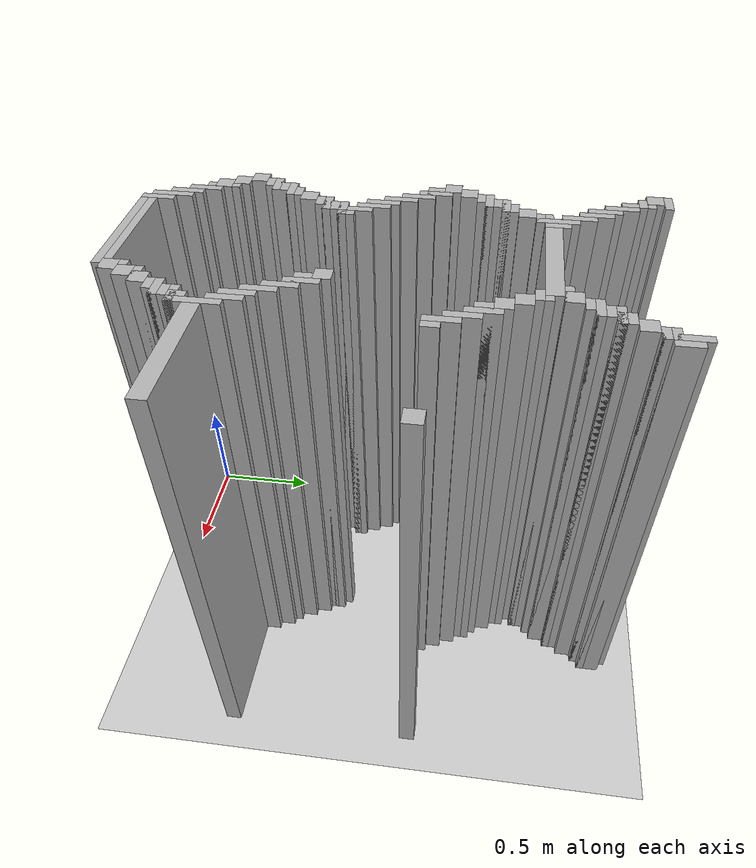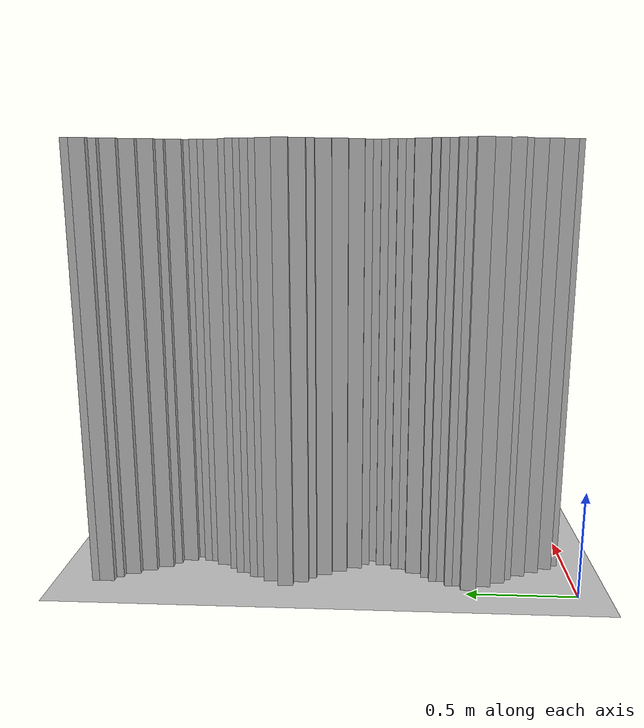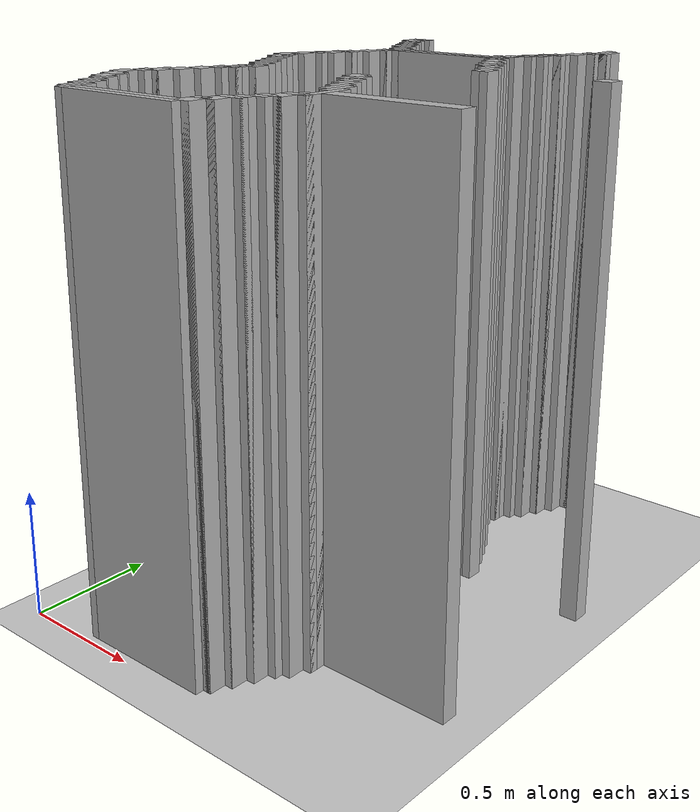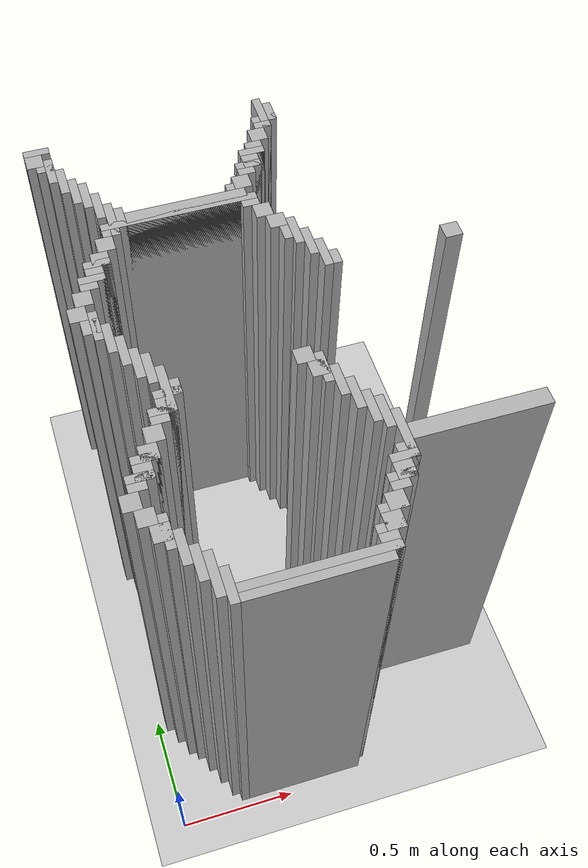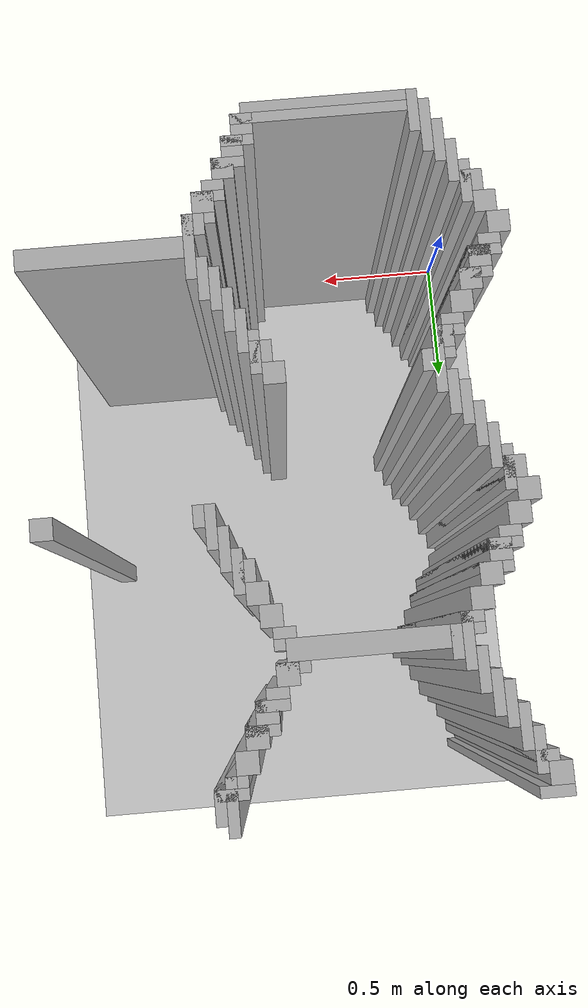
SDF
<sdf version="1.6">
 <world name="slam_world">
  <model name="ground_plane">
   <static>true</static>
   <link name="link">
    <collision name="collision">
     <geometry><plane><normal>0 0 1</normal><size>100 100</size></plane></geometry>
    </collision>
    <visual name="visual">
     <geometry><plane><normal>0 0 1</normal><size>100 100</size></plane></geometry>
     <material>
      <ambient>0.8 0.8 0.8 1</ambient>
      <diffuse>0.8 0.8 0.8 1</diffuse>
      <specular>0.8 0.8 0.8 1</specular>
     </material>
    </visual>
   </link>
  </model>
  <model name="wall_5014">
   <static>true</static>
   <pose>1.0266821345707655 2.1751740139211138 1.0 0 0 0</pose>
   <link name="link">
    <collision name="collision">
     <geometry><box><size>0.03480278422273782 0.17401392111368907 2.0</size></box></geometry>
    </collision>
    <visual name="visual">
     <geometry><box><size>0.03480278422273782 0.17401392111368907 2.0</size></box></geometry>
     <material><ambient>0.5 0.5 0.5 1</ambient><diffuse>0.7 0.7 0.7 1</diffuse></material>
    </visual>
   </link>
  </model>
  <model name="wall_5030">
   <static>true</static>
   <pose>0.08700696055684454 2.2099767981438516 1.0 0 0 0</pose>
   <link name="link">
    <collision name="collision">
     <geometry><box><size>0.10440835266821345 0.03480278422273782 2.0</size></box></geometry>
    </collision>
    <visual name="visual">
     <geometry><box><size>0.10440835266821345 0.03480278422273782 2.0</size></box></geometry>
     <material><ambient>0.5 0.5 0.5 1</ambient><diffuse>0.7 0.7 0.7 1</diffuse></material>
    </visual>
   </link>
  </model>
  <model name="wall_5031">
   <static>true</static>
   <pose>1.0614849187935034 2.1751740139211138 1.0 0 0 0</pose>
   <link name="link">
    <collision name="collision">
     <geometry><box><size>0.03480278422273782 0.10440835266821345 2.0</size></box></geometry>
    </collision>
    <visual name="visual">
     <geometry><box><size>0.03480278422273782 0.10440835266821345 2.0</size></box></geometry>
     <material><ambient>0.5 0.5 0.5 1</ambient><diffuse>0.7 0.7 0.7 1</diffuse></material>
    </visual>
   </link>
  </model>
  <model name="wall_5045">
   <static>true</static>
   <pose>0.06960556844547564 2.1577726218097446 1.0 0 0 0</pose>
   <link name="link">
    <collision name="collision">
     <geometry><box><size>0.06960556844547564 0.06960556844547564 2.0</size></box></geometry>
    </collision>
    <visual name="visual">
     <geometry><box><size>0.06960556844547564 0.06960556844547564 2.0</size></box></geometry>
     <material><ambient>0.5 0.5 0.5 1</ambient><diffuse>0.7 0.7 0.7 1</diffuse></material>
    </visual>
   </link>
  </model>
  <model name="wall_5056">
   <static>true</static>
   <pose>0.12180974477958237 2.088167053364269 1.0 0 0 0</pose>
   <link name="link">
    <collision name="collision">
     <geometry><box><size>0.03480278422273782 0.13921113689095127 2.0</size></box></geometry>
    </collision>
    <visual name="visual">
     <geometry><box><size>0.03480278422273782 0.13921113689095127 2.0</size></box></geometry>
     <material><ambient>0.5 0.5 0.5 1</ambient><diffuse>0.7 0.7 0.7 1</diffuse></material>
    </visual>
   </link>
  </model>
  <model name="wall_5057">
   <static>true</static>
   <pose>1.0266821345707655 2.140371229698376 1.0 0 0 0</pose>
   <link name="link">
    <collision name="collision">
     <geometry><box><size>0.10440835266821345 0.03480278422273782 2.0</size></box></geometry>
    </collision>
    <visual name="visual">
     <geometry><box><size>0.10440835266821345 0.03480278422273782 2.0</size></box></geometry>
     <material><ambient>0.5 0.5 0.5 1</ambient><diffuse>0.7 0.7 0.7 1</diffuse></material>
    </visual>
   </link>
  </model>
  <model name="wall_5073">
   <static>true</static>
   <pose>0.10440835266821345 2.105568445475638 1.0 0 0 0</pose>
   <link name="link">
    <collision name="collision">
     <geometry><box><size>0.06960556844547564 0.03480278422273782 2.0</size></box></geometry>
    </collision>
    <visual name="visual">
     <geometry><box><size>0.06960556844547564 0.03480278422273782 2.0</size></box></geometry>
     <material><ambient>0.5 0.5 0.5 1</ambient><diffuse>0.7 0.7 0.7 1</diffuse></material>
    </visual>
   </link>
  </model>
  <model name="wall_5074">
   <static>true</static>
   <pose>1.0092807424593968 2.105568445475638 1.0 0 0 0</pose>
   <link name="link">
    <collision name="collision">
     <geometry><box><size>0.06960556844547564 0.03480278422273782 2.0</size></box></geometry>
    </collision>
    <visual name="visual">
     <geometry><box><size>0.06960556844547564 0.03480278422273782 2.0</size></box></geometry>
     <material><ambient>0.5 0.5 0.5 1</ambient><diffuse>0.7 0.7 0.7 1</diffuse></material>
    </visual>
   </link>
  </model>
  <model name="wall_5087">
   <static>true</static>
   <pose>0.15661252900232017 2.0185614849187936 1.0 0 0 0</pose>
   <link name="link">
    <collision name="collision">
     <geometry><box><size>0.03480278422273782 0.13921113689095127 2.0</size></box></geometry>
    </collision>
    <visual name="visual">
     <geometry><box><size>0.03480278422273782 0.13921113689095127 2.0</size></box></geometry>
     <material><ambient>0.5 0.5 0.5 1</ambient><diffuse>0.7 0.7 0.7 1</diffuse></material>
    </visual>
   </link>
  </model>
  <model name="wall_5088">
   <static>true</static>
   <pose>0.974477958236659 2.053364269141531 1.0 0 0 0</pose>
   <link name="link">
    <collision name="collision">
     <geometry><box><size>0.06960556844547564 0.06960556844547564 2.0</size></box></geometry>
    </collision>
    <visual name="visual">
     <geometry><box><size>0.06960556844547564 0.06960556844547564 2.0</size></box></geometry>
     <material><ambient>0.5 0.5 0.5 1</ambient><diffuse>0.7 0.7 0.7 1</diffuse></material>
    </visual>
   </link>
  </model>
  <model name="wall_5101">
   <static>true</static>
   <pose>0.191415313225058 1.948955916473318 1.0 0 0 0</pose>
   <link name="link">
    <collision name="collision">
     <geometry><box><size>0.03480278422273782 0.13921113689095127 2.0</size></box></geometry>
    </collision>
    <visual name="visual">
     <geometry><box><size>0.03480278422273782 0.13921113689095127 2.0</size></box></geometry>
     <material><ambient>0.5 0.5 0.5 1</ambient><diffuse>0.7 0.7 0.7 1</diffuse></material>
    </visual>
   </link>
  </model>
  <model name="wall_5102">
   <static>true</static>
   <pose>0.9396751740139211 1.9837587006960555 1.0 0 0 0</pose>
   <link name="link">
    <collision name="collision">
     <geometry><box><size>0.06960556844547564 0.06960556844547564 2.0</size></box></geometry>
    </collision>
    <visual name="visual">
     <geometry><box><size>0.06960556844547564 0.06960556844547564 2.0</size></box></geometry>
     <material><ambient>0.5 0.5 0.5 1</ambient><diffuse>0.7 0.7 0.7 1</diffuse></material>
    </visual>
   </link>
  </model>
  <model name="wall_5115">
   <static>true</static>
   <pose>0.2262180974477958 1.91415313225058 1.0 0 0 0</pose>
   <link name="link">
    <collision name="collision">
     <geometry><box><size>0.03480278422273782 0.13921113689095127 2.0</size></box></geometry>
    </collision>
    <visual name="visual">
     <geometry><box><size>0.03480278422273782 0.13921113689095127 2.0</size></box></geometry>
     <material><ambient>0.5 0.5 0.5 1</ambient><diffuse>0.7 0.7 0.7 1</diffuse></material>
    </visual>
   </link>
  </model>
  <model name="wall_5116">
   <static>true</static>
   <pose>0.9222737819025522 1.9663573085846866 1.0 0 0 0</pose>
   <link name="link">
    <collision name="collision">
     <geometry><box><size>0.10440835266821345 0.03480278422273782 2.0</size></box></geometry>
    </collision>
    <visual name="visual">
     <geometry><box><size>0.10440835266821345 0.03480278422273782 2.0</size></box></geometry>
     <material><ambient>0.5 0.5 0.5 1</ambient><diffuse>0.7 0.7 0.7 1</diffuse></material>
    </visual>
   </link>
  </model>
  <model name="wall_5129">
   <static>true</static>
   <pose>0.9048723897911832 1.91415313225058 1.0 0 0 0</pose>
   <link name="link">
    <collision name="collision">
     <geometry><box><size>0.06960556844547564 0.06960556844547564 2.0</size></box></geometry>
    </collision>
    <visual name="visual">
     <geometry><box><size>0.06960556844547564 0.06960556844547564 2.0</size></box></geometry>
     <material><ambient>0.5 0.5 0.5 1</ambient><diffuse>0.7 0.7 0.7 1</diffuse></material>
    </visual>
   </link>
  </model>
  <model name="wall_5137">
   <static>true</static>
   <pose>0.2610208816705336 1.8445475638051043 1.0 0 0 0</pose>
   <link name="link">
    <collision name="collision">
     <geometry><box><size>0.03480278422273782 0.13921113689095127 2.0</size></box></geometry>
    </collision>
    <visual name="visual">
     <geometry><box><size>0.03480278422273782 0.13921113689095127 2.0</size></box></geometry>
     <material><ambient>0.5 0.5 0.5 1</ambient><diffuse>0.7 0.7 0.7 1</diffuse></material>
    </visual>
   </link>
  </model>
  <model name="wall_5138">
   <static>true</static>
   <pose>0.8874709976798143 1.896751740139211 1.0 0 0 0</pose>
   <link name="link">
    <collision name="collision">
     <geometry><box><size>0.10440835266821345 0.03480278422273782 2.0</size></box></geometry>
    </collision>
    <visual name="visual">
     <geometry><box><size>0.10440835266821345 0.03480278422273782 2.0</size></box></geometry>
     <material><ambient>0.5 0.5 0.5 1</ambient><diffuse>0.7 0.7 0.7 1</diffuse></material>
    </visual>
   </link>
  </model>
  <model name="wall_5151">
   <static>true</static>
   <pose>0.8700696055684455 1.8619489559164732 1.0 0 0 0</pose>
   <link name="link">
    <collision name="collision">
     <geometry><box><size>0.06960556844547564 0.03480278422273782 2.0</size></box></geometry>
    </collision>
    <visual name="visual">
     <geometry><box><size>0.06960556844547564 0.03480278422273782 2.0</size></box></geometry>
     <material><ambient>0.5 0.5 0.5 1</ambient><diffuse>0.7 0.7 0.7 1</diffuse></material>
    </visual>
   </link>
  </model>
  <model name="wall_5156">
   <static>true</static>
   <pose>0.29582366589327147 1.75754060324826 1.0 0 0 0</pose>
   <link name="link">
    <collision name="collision">
     <geometry><box><size>0.03480278422273782 0.17401392111368907 2.0</size></box></geometry>
    </collision>
    <visual name="visual">
     <geometry><box><size>0.03480278422273782 0.17401392111368907 2.0</size></box></geometry>
     <material><ambient>0.5 0.5 0.5 1</ambient><diffuse>0.7 0.7 0.7 1</diffuse></material>
    </visual>
   </link>
  </model>
  <model name="wall_5157">
   <static>true</static>
   <pose>0.8352668213457076 1.8097447795823665 1.0 0 0 0</pose>
   <link name="link">
    <collision name="collision">
     <geometry><box><size>0.06960556844547564 0.06960556844547564 2.0</size></box></geometry>
    </collision>
    <visual name="visual">
     <geometry><box><size>0.06960556844547564 0.06960556844547564 2.0</size></box></geometry>
     <material><ambient>0.5 0.5 0.5 1</ambient><diffuse>0.7 0.7 0.7 1</diffuse></material>
    </visual>
   </link>
  </model>
  <model name="wall_5170">
   <static>true</static>
   <pose>0.3306264501160093 1.75754060324826 1.0 0 0 0</pose>
   <link name="link">
    <collision name="collision">
     <geometry><box><size>0.03480278422273782 0.10440835266821345 2.0</size></box></geometry>
    </collision>
    <visual name="visual">
     <geometry><box><size>0.03480278422273782 0.10440835266821345 2.0</size></box></geometry>
     <material><ambient>0.5 0.5 0.5 1</ambient><diffuse>0.7 0.7 0.7 1</diffuse></material>
    </visual>
   </link>
  </model>
  <model name="wall_5171">
   <static>true</static>
   <pose>0.8178654292343387 1.7923433874709975 1.0 0 0 0</pose>
   <link name="link">
    <collision name="collision">
     <geometry><box><size>0.10440835266821345 0.03480278422273782 2.0</size></box></geometry>
    </collision>
    <visual name="visual">
     <geometry><box><size>0.10440835266821345 0.03480278422273782 2.0</size></box></geometry>
     <material><ambient>0.5 0.5 0.5 1</ambient><diffuse>0.7 0.7 0.7 1</diffuse></material>
    </visual>
   </link>
  </model>
  <model name="wall_5184">
   <static>true</static>
   <pose>0.5916473317865429 1.740139211136891 1.0 0 0 0</pose>
   <link name="link">
    <collision name="collision">
     <geometry><box><size>0.4872389791183295 0.06960556844547564 2.0</size></box></geometry>
    </collision>
    <visual name="visual">
     <geometry><box><size>0.4872389791183295 0.06960556844547564 2.0</size></box></geometry>
     <material><ambient>0.5 0.5 0.5 1</ambient><diffuse>0.7 0.7 0.7 1</diffuse></material>
    </visual>
   </link>
  </model>
  <model name="wall_5194">
   <static>true</static>
   <pose>0.5568445475638051 1.722737819025522 1.0 0 0 0</pose>
   <link name="link">
    <collision name="collision">
     <geometry><box><size>0.6264501160092807 0.03480278422273782 2.0</size></box></geometry>
    </collision>
    <visual name="visual">
     <geometry><box><size>0.6264501160092807 0.03480278422273782 2.0</size></box></geometry>
     <material><ambient>0.5 0.5 0.5 1</ambient><diffuse>0.7 0.7 0.7 1</diffuse></material>
    </visual>
   </link>
  </model>
  <model name="wall_5206">
   <static>true</static>
   <pose>0.27842227378190254 1.6879350348027842 1.0 0 0 0</pose>
   <link name="link">
    <collision name="collision">
     <geometry><box><size>0.06960556844547564 0.03480278422273782 2.0</size></box></geometry>
    </collision>
    <visual name="visual">
     <geometry><box><size>0.06960556844547564 0.03480278422273782 2.0</size></box></geometry>
     <material><ambient>0.5 0.5 0.5 1</ambient><diffuse>0.7 0.7 0.7 1</diffuse></material>
    </visual>
   </link>
  </model>
  <model name="wall_5207">
   <static>true</static>
   <pose>0.8352668213457076 1.6879350348027842 1.0 0 0 0</pose>
   <link name="link">
    <collision name="collision">
     <geometry><box><size>0.06960556844547564 0.03480278422273782 2.0</size></box></geometry>
    </collision>
    <visual name="visual">
     <geometry><box><size>0.06960556844547564 0.03480278422273782 2.0</size></box></geometry>
     <material><ambient>0.5 0.5 0.5 1</ambient><diffuse>0.7 0.7 0.7 1</diffuse></material>
    </visual>
   </link>
  </model>
  <model name="wall_5221">
   <static>true</static>
   <pose>0.24361948955916474 1.6357308584686774 1.0 0 0 0</pose>
   <link name="link">
    <collision name="collision">
     <geometry><box><size>0.06960556844547564 0.06960556844547564 2.0</size></box></geometry>
    </collision>
    <visual name="visual">
     <geometry><box><size>0.06960556844547564 0.06960556844547564 2.0</size></box></geometry>
     <material><ambient>0.5 0.5 0.5 1</ambient><diffuse>0.7 0.7 0.7 1</diffuse></material>
    </visual>
   </link>
  </model>
  <model name="wall_5222">
   <static>true</static>
   <pose>0.8700696055684455 1.6357308584686774 1.0 0 0 0</pose>
   <link name="link">
    <collision name="collision">
     <geometry><box><size>0.06960556844547564 0.06960556844547564 2.0</size></box></geometry>
    </collision>
    <visual name="visual">
     <geometry><box><size>0.06960556844547564 0.06960556844547564 2.0</size></box></geometry>
     <material><ambient>0.5 0.5 0.5 1</ambient><diffuse>0.7 0.7 0.7 1</diffuse></material>
    </visual>
   </link>
  </model>
  <model name="wall_5236">
   <static>true</static>
   <pose>0.2088167053364269 1.5661252900232019 1.0 0 0 0</pose>
   <link name="link">
    <collision name="collision">
     <geometry><box><size>0.06960556844547564 0.06960556844547564 2.0</size></box></geometry>
    </collision>
    <visual name="visual">
     <geometry><box><size>0.06960556844547564 0.06960556844547564 2.0</size></box></geometry>
     <material><ambient>0.5 0.5 0.5 1</ambient><diffuse>0.7 0.7 0.7 1</diffuse></material>
    </visual>
   </link>
  </model>
  <model name="wall_5237">
   <static>true</static>
   <pose>0.9048723897911832 1.5661252900232019 1.0 0 0 0</pose>
   <link name="link">
    <collision name="collision">
     <geometry><box><size>0.06960556844547564 0.06960556844547564 2.0</size></box></geometry>
    </collision>
    <visual name="visual">
     <geometry><box><size>0.06960556844547564 0.06960556844547564 2.0</size></box></geometry>
     <material><ambient>0.5 0.5 0.5 1</ambient><diffuse>0.7 0.7 0.7 1</diffuse></material>
    </visual>
   </link>
  </model>
  <model name="wall_5251">
   <static>true</static>
   <pose>0.191415313225058 1.548723897911833 1.0 0 0 0</pose>
   <link name="link">
    <collision name="collision">
     <geometry><box><size>0.10440835266821345 0.03480278422273782 2.0</size></box></geometry>
    </collision>
    <visual name="visual">
     <geometry><box><size>0.10440835266821345 0.03480278422273782 2.0</size></box></geometry>
     <material><ambient>0.5 0.5 0.5 1</ambient><diffuse>0.7 0.7 0.7 1</diffuse></material>
    </visual>
   </link>
  </model>
  <model name="wall_5252">
   <static>true</static>
   <pose>0.95707656612529 1.4965197215777262 1.0 0 0 0</pose>
   <link name="link">
    <collision name="collision">
     <geometry><box><size>0.03480278422273782 0.13921113689095127 2.0</size></box></geometry>
    </collision>
    <visual name="visual">
     <geometry><box><size>0.03480278422273782 0.13921113689095127 2.0</size></box></geometry>
     <material><ambient>0.5 0.5 0.5 1</ambient><diffuse>0.7 0.7 0.7 1</diffuse></material>
    </visual>
   </link>
  </model>
  <model name="wall_5266">
   <static>true</static>
   <pose>0.17401392111368907 1.4965197215777262 1.0 0 0 0</pose>
   <link name="link">
    <collision name="collision">
     <geometry><box><size>0.06960556844547564 0.06960556844547564 2.0</size></box></geometry>
    </collision>
    <visual name="visual">
     <geometry><box><size>0.06960556844547564 0.06960556844547564 2.0</size></box></geometry>
     <material><ambient>0.5 0.5 0.5 1</ambient><diffuse>0.7 0.7 0.7 1</diffuse></material>
    </visual>
   </link>
  </model>
  <model name="wall_5267">
   <static>true</static>
   <pose>0.9396751740139211 1.4965197215777262 1.0 0 0 0</pose>
   <link name="link">
    <collision name="collision">
     <geometry><box><size>0.06960556844547564 0.06960556844547564 2.0</size></box></geometry>
    </collision>
    <visual name="visual">
     <geometry><box><size>0.06960556844547564 0.06960556844547564 2.0</size></box></geometry>
     <material><ambient>0.5 0.5 0.5 1</ambient><diffuse>0.7 0.7 0.7 1</diffuse></material>
    </visual>
   </link>
  </model>
  <model name="wall_5277">
   <static>true</static>
   <pose>0.15661252900232017 1.4791183294663572 1.0 0 0 0</pose>
   <link name="link">
    <collision name="collision">
     <geometry><box><size>0.10440835266821345 0.03480278422273782 2.0</size></box></geometry>
    </collision>
    <visual name="visual">
     <geometry><box><size>0.10440835266821345 0.03480278422273782 2.0</size></box></geometry>
     <material><ambient>0.5 0.5 0.5 1</ambient><diffuse>0.7 0.7 0.7 1</diffuse></material>
    </visual>
   </link>
  </model>
  <model name="wall_5278">
   <static>true</static>
   <pose>0.9918793503480278 1.4269141531322505 1.0 0 0 0</pose>
   <link name="link">
    <collision name="collision">
     <geometry><box><size>0.03480278422273782 0.13921113689095127 2.0</size></box></geometry>
    </collision>
    <visual name="visual">
     <geometry><box><size>0.03480278422273782 0.13921113689095127 2.0</size></box></geometry>
     <material><ambient>0.5 0.5 0.5 1</ambient><diffuse>0.7 0.7 0.7 1</diffuse></material>
    </visual>
   </link>
  </model>
  <model name="wall_5292">
   <static>true</static>
   <pose>0.13921113689095127 1.4443155452436194 1.0 0 0 0</pose>
   <link name="link">
    <collision name="collision">
     <geometry><box><size>0.06960556844547564 0.03480278422273782 2.0</size></box></geometry>
    </collision>
    <visual name="visual">
     <geometry><box><size>0.06960556844547564 0.03480278422273782 2.0</size></box></geometry>
     <material><ambient>0.5 0.5 0.5 1</ambient><diffuse>0.7 0.7 0.7 1</diffuse></material>
    </visual>
   </link>
  </model>
  <model name="wall_5299">
   <static>true</static>
   <pose>0.10440835266821345 1.3921113689095126 1.0 0 0 0</pose>
   <link name="link">
    <collision name="collision">
     <geometry><box><size>0.06960556844547564 0.06960556844547564 2.0</size></box></geometry>
    </collision>
    <visual name="visual">
     <geometry><box><size>0.06960556844547564 0.06960556844547564 2.0</size></box></geometry>
     <material><ambient>0.5 0.5 0.5 1</ambient><diffuse>0.7 0.7 0.7 1</diffuse></material>
    </visual>
   </link>
  </model>
  <model name="wall_5300">
   <static>true</static>
   <pose>1.0266821345707655 1.357308584686775 1.0 0 0 0</pose>
   <link name="link">
    <collision name="collision">
     <geometry><box><size>0.03480278422273782 0.13921113689095127 2.0</size></box></geometry>
    </collision>
    <visual name="visual">
     <geometry><box><size>0.03480278422273782 0.13921113689095127 2.0</size></box></geometry>
     <material><ambient>0.5 0.5 0.5 1</ambient><diffuse>0.7 0.7 0.7 1</diffuse></material>
    </visual>
   </link>
  </model>
  <model name="wall_5324">
   <static>true</static>
   <pose>0.06960556844547564 1.322505800464037 1.0 0 0 0</pose>
   <link name="link">
    <collision name="collision">
     <geometry><box><size>0.06960556844547564 0.06960556844547564 2.0</size></box></geometry>
    </collision>
    <visual name="visual">
     <geometry><box><size>0.06960556844547564 0.06960556844547564 2.0</size></box></geometry>
     <material><ambient>0.5 0.5 0.5 1</ambient><diffuse>0.7 0.7 0.7 1</diffuse></material>
    </visual>
   </link>
  </model>
  <model name="wall_5325">
   <static>true</static>
   <pose>1.0614849187935034 1.322505800464037 1.0 0 0 0</pose>
   <link name="link">
    <collision name="collision">
     <geometry><box><size>0.03480278422273782 0.06960556844547564 2.0</size></box></geometry>
    </collision>
    <visual name="visual">
     <geometry><box><size>0.03480278422273782 0.06960556844547564 2.0</size></box></geometry>
     <material><ambient>0.5 0.5 0.5 1</ambient><diffuse>0.7 0.7 0.7 1</diffuse></material>
    </visual>
   </link>
  </model>
  <model name="wall_5326">
   <static>true</static>
   <pose>1.531322505800464 1.322505800464037 1.0 0 0 0</pose>
   <link name="link">
    <collision name="collision">
     <geometry><box><size>0.06960556844547564 0.06960556844547564 2.0</size></box></geometry>
    </collision>
    <visual name="visual">
     <geometry><box><size>0.06960556844547564 0.06960556844547564 2.0</size></box></geometry>
     <material><ambient>0.5 0.5 0.5 1</ambient><diffuse>0.7 0.7 0.7 1</diffuse></material>
    </visual>
   </link>
  </model>
  <model name="wall_5337">
   <static>true</static>
   <pose>0.12180974477958237 1.2529002320185614 1.0 0 0 0</pose>
   <link name="link">
    <collision name="collision">
     <geometry><box><size>0.03480278422273782 0.13921113689095127 2.0</size></box></geometry>
    </collision>
    <visual name="visual">
     <geometry><box><size>0.03480278422273782 0.13921113689095127 2.0</size></box></geometry>
     <material><ambient>0.5 0.5 0.5 1</ambient><diffuse>0.7 0.7 0.7 1</diffuse></material>
    </visual>
   </link>
  </model>
  <model name="wall_5345">
   <static>true</static>
   <pose>0.10440835266821345 1.2529002320185614 1.0 0 0 0</pose>
   <link name="link">
    <collision name="collision">
     <geometry><box><size>0.06960556844547564 0.06960556844547564 2.0</size></box></geometry>
    </collision>
    <visual name="visual">
     <geometry><box><size>0.06960556844547564 0.06960556844547564 2.0</size></box></geometry>
     <material><ambient>0.5 0.5 0.5 1</ambient><diffuse>0.7 0.7 0.7 1</diffuse></material>
    </visual>
   </link>
  </model>
  <model name="wall_5356">
   <static>true</static>
   <pose>0.15661252900232017 1.1832946635730859 1.0 0 0 0</pose>
   <link name="link">
    <collision name="collision">
     <geometry><box><size>0.03480278422273782 0.13921113689095127 2.0</size></box></geometry>
    </collision>
    <visual name="visual">
     <geometry><box><size>0.03480278422273782 0.13921113689095127 2.0</size></box></geometry>
     <material><ambient>0.5 0.5 0.5 1</ambient><diffuse>0.7 0.7 0.7 1</diffuse></material>
    </visual>
   </link>
  </model>
  <model name="wall_5375">
   <static>true</static>
   <pose>0.191415313225058 1.1136890951276102 1.0 0 0 0</pose>
   <link name="link">
    <collision name="collision">
     <geometry><box><size>0.03480278422273782 0.13921113689095127 2.0</size></box></geometry>
    </collision>
    <visual name="visual">
     <geometry><box><size>0.03480278422273782 0.13921113689095127 2.0</size></box></geometry>
     <material><ambient>0.5 0.5 0.5 1</ambient><diffuse>0.7 0.7 0.7 1</diffuse></material>
    </visual>
   </link>
  </model>
  <model name="wall_5386">
   <static>true</static>
   <pose>0.2262180974477958 1.0440835266821344 1.0 0 0 0</pose>
   <link name="link">
    <collision name="collision">
     <geometry><box><size>0.03480278422273782 0.13921113689095127 2.0</size></box></geometry>
    </collision>
    <visual name="visual">
     <geometry><box><size>0.03480278422273782 0.13921113689095127 2.0</size></box></geometry>
     <material><ambient>0.5 0.5 0.5 1</ambient><diffuse>0.7 0.7 0.7 1</diffuse></material>
    </visual>
   </link>
  </model>
  <model name="wall_5397">
   <static>true</static>
   <pose>0.2610208816705336 1.0092807424593968 1.0 0 0 0</pose>
   <link name="link">
    <collision name="collision">
     <geometry><box><size>0.03480278422273782 0.13921113689095127 2.0</size></box></geometry>
    </collision>
    <visual name="visual">
     <geometry><box><size>0.03480278422273782 0.13921113689095127 2.0</size></box></geometry>
     <material><ambient>0.5 0.5 0.5 1</ambient><diffuse>0.7 0.7 0.7 1</diffuse></material>
    </visual>
   </link>
  </model>
  <model name="wall_5413">
   <static>true</static>
   <pose>0.29582366589327147 0.9048723897911832 1.0 0 0 0</pose>
   <link name="link">
    <collision name="collision">
     <geometry><box><size>0.03480278422273782 0.2088167053364269 2.0</size></box></geometry>
    </collision>
    <visual name="visual">
     <geometry><box><size>0.03480278422273782 0.2088167053364269 2.0</size></box></geometry>
     <material><ambient>0.5 0.5 0.5 1</ambient><diffuse>0.7 0.7 0.7 1</diffuse></material>
    </visual>
   </link>
  </model>
  <model name="wall_5429">
   <static>true</static>
   <pose>0.3306264501160093 0.9048723897911832 1.0 0 0 0</pose>
   <link name="link">
    <collision name="collision">
     <geometry><box><size>0.03480278422273782 0.06960556844547564 2.0</size></box></geometry>
    </collision>
    <visual name="visual">
     <geometry><box><size>0.03480278422273782 0.06960556844547564 2.0</size></box></geometry>
     <material><ambient>0.5 0.5 0.5 1</ambient><diffuse>0.7 0.7 0.7 1</diffuse></material>
    </visual>
   </link>
  </model>
  <model name="wall_5430">
   <static>true</static>
   <pose>0.8004640371229698 0.9048723897911832 1.0 0 0 0</pose>
   <link name="link">
    <collision name="collision">
     <geometry><box><size>0.06960556844547564 0.06960556844547564 2.0</size></box></geometry>
    </collision>
    <visual name="visual">
     <geometry><box><size>0.06960556844547564 0.06960556844547564 2.0</size></box></geometry>
     <material><ambient>0.5 0.5 0.5 1</ambient><diffuse>0.7 0.7 0.7 1</diffuse></material>
    </visual>
   </link>
  </model>
  <model name="wall_5444">
   <static>true</static>
   <pose>0.29582366589327147 0.8874709976798143 1.0 0 0 0</pose>
   <link name="link">
    <collision name="collision">
     <geometry><box><size>0.10440835266821345 0.03480278422273782 2.0</size></box></geometry>
    </collision>
    <visual name="visual">
     <geometry><box><size>0.10440835266821345 0.03480278422273782 2.0</size></box></geometry>
     <material><ambient>0.5 0.5 0.5 1</ambient><diffuse>0.7 0.7 0.7 1</diffuse></material>
    </visual>
   </link>
  </model>
  <model name="wall_5445">
   <static>true</static>
   <pose>0.8526682134570766 0.8352668213457076 1.0 0 0 0</pose>
   <link name="link">
    <collision name="collision">
     <geometry><box><size>0.03480278422273782 0.13921113689095127 2.0</size></box></geometry>
    </collision>
    <visual name="visual">
     <geometry><box><size>0.03480278422273782 0.13921113689095127 2.0</size></box></geometry>
     <material><ambient>0.5 0.5 0.5 1</ambient><diffuse>0.7 0.7 0.7 1</diffuse></material>
    </visual>
   </link>
  </model>
  <model name="wall_5454">
   <static>true</static>
   <pose>0.27842227378190254 0.8352668213457076 1.0 0 0 0</pose>
   <link name="link">
    <collision name="collision">
     <geometry><box><size>0.06960556844547564 0.06960556844547564 2.0</size></box></geometry>
    </collision>
    <visual name="visual">
     <geometry><box><size>0.06960556844547564 0.06960556844547564 2.0</size></box></geometry>
     <material><ambient>0.5 0.5 0.5 1</ambient><diffuse>0.7 0.7 0.7 1</diffuse></material>
    </visual>
   </link>
  </model>
  <model name="wall_5455">
   <static>true</static>
   <pose>0.8352668213457076 0.8352668213457076 1.0 0 0 0</pose>
   <link name="link">
    <collision name="collision">
     <geometry><box><size>0.06960556844547564 0.06960556844547564 2.0</size></box></geometry>
    </collision>
    <visual name="visual">
     <geometry><box><size>0.06960556844547564 0.06960556844547564 2.0</size></box></geometry>
     <material><ambient>0.5 0.5 0.5 1</ambient><diffuse>0.7 0.7 0.7 1</diffuse></material>
    </visual>
   </link>
  </model>
  <model name="wall_5464">
   <static>true</static>
   <pose>0.2610208816705336 0.8178654292343387 1.0 0 0 0</pose>
   <link name="link">
    <collision name="collision">
     <geometry><box><size>0.10440835266821345 0.03480278422273782 2.0</size></box></geometry>
    </collision>
    <visual name="visual">
     <geometry><box><size>0.10440835266821345 0.03480278422273782 2.0</size></box></geometry>
     <material><ambient>0.5 0.5 0.5 1</ambient><diffuse>0.7 0.7 0.7 1</diffuse></material>
    </visual>
   </link>
  </model>
  <model name="wall_5465">
   <static>true</static>
   <pose>0.8874709976798143 0.765661252900232 1.0 0 0 0</pose>
   <link name="link">
    <collision name="collision">
     <geometry><box><size>0.03480278422273782 0.13921113689095127 2.0</size></box></geometry>
    </collision>
    <visual name="visual">
     <geometry><box><size>0.03480278422273782 0.13921113689095127 2.0</size></box></geometry>
     <material><ambient>0.5 0.5 0.5 1</ambient><diffuse>0.7 0.7 0.7 1</diffuse></material>
    </visual>
   </link>
  </model>
  <model name="wall_5474">
   <static>true</static>
   <pose>0.24361948955916474 0.7830626450116009 1.0 0 0 0</pose>
   <link name="link">
    <collision name="collision">
     <geometry><box><size>0.06960556844547564 0.03480278422273782 2.0</size></box></geometry>
    </collision>
    <visual name="visual">
     <geometry><box><size>0.06960556844547564 0.03480278422273782 2.0</size></box></geometry>
     <material><ambient>0.5 0.5 0.5 1</ambient><diffuse>0.7 0.7 0.7 1</diffuse></material>
    </visual>
   </link>
  </model>
  <model name="wall_5480">
   <static>true</static>
   <pose>0.2088167053364269 0.7308584686774942 1.0 0 0 0</pose>
   <link name="link">
    <collision name="collision">
     <geometry><box><size>0.06960556844547564 0.06960556844547564 2.0</size></box></geometry>
    </collision>
    <visual name="visual">
     <geometry><box><size>0.06960556844547564 0.06960556844547564 2.0</size></box></geometry>
     <material><ambient>0.5 0.5 0.5 1</ambient><diffuse>0.7 0.7 0.7 1</diffuse></material>
    </visual>
   </link>
  </model>
  <model name="wall_5481">
   <static>true</static>
   <pose>0.9222737819025522 0.6960556844547563 1.0 0 0 0</pose>
   <link name="link">
    <collision name="collision">
     <geometry><box><size>0.03480278422273782 0.13921113689095127 2.0</size></box></geometry>
    </collision>
    <visual name="visual">
     <geometry><box><size>0.03480278422273782 0.13921113689095127 2.0</size></box></geometry>
     <material><ambient>0.5 0.5 0.5 1</ambient><diffuse>0.7 0.7 0.7 1</diffuse></material>
    </visual>
   </link>
  </model>
  <model name="wall_5490">
   <static>true</static>
   <pose>0.17401392111368907 0.6612529002320185 1.0 0 0 0</pose>
   <link name="link">
    <collision name="collision">
     <geometry><box><size>0.06960556844547564 0.06960556844547564 2.0</size></box></geometry>
    </collision>
    <visual name="visual">
     <geometry><box><size>0.06960556844547564 0.06960556844547564 2.0</size></box></geometry>
     <material><ambient>0.5 0.5 0.5 1</ambient><diffuse>0.7 0.7 0.7 1</diffuse></material>
    </visual>
   </link>
  </model>
  <model name="wall_5491">
   <static>true</static>
   <pose>0.95707656612529 0.6264501160092807 1.0 0 0 0</pose>
   <link name="link">
    <collision name="collision">
     <geometry><box><size>0.03480278422273782 0.13921113689095127 2.0</size></box></geometry>
    </collision>
    <visual name="visual">
     <geometry><box><size>0.03480278422273782 0.13921113689095127 2.0</size></box></geometry>
     <material><ambient>0.5 0.5 0.5 1</ambient><diffuse>0.7 0.7 0.7 1</diffuse></material>
    </visual>
   </link>
  </model>
  <model name="wall_5500">
   <static>true</static>
   <pose>0.15661252900232017 0.6438515081206496 1.0 0 0 0</pose>
   <link name="link">
    <collision name="collision">
     <geometry><box><size>0.10440835266821345 0.03480278422273782 2.0</size></box></geometry>
    </collision>
    <visual name="visual">
     <geometry><box><size>0.10440835266821345 0.03480278422273782 2.0</size></box></geometry>
     <material><ambient>0.5 0.5 0.5 1</ambient><diffuse>0.7 0.7 0.7 1</diffuse></material>
    </visual>
   </link>
  </model>
  <model name="wall_5501">
   <static>true</static>
   <pose>0.9918793503480278 0.5916473317865429 1.0 0 0 0</pose>
   <link name="link">
    <collision name="collision">
     <geometry><box><size>0.03480278422273782 0.13921113689095127 2.0</size></box></geometry>
    </collision>
    <visual name="visual">
     <geometry><box><size>0.03480278422273782 0.13921113689095127 2.0</size></box></geometry>
     <material><ambient>0.5 0.5 0.5 1</ambient><diffuse>0.7 0.7 0.7 1</diffuse></material>
    </visual>
   </link>
  </model>
  <model name="wall_5510">
   <static>true</static>
   <pose>0.13921113689095127 0.5916473317865429 1.0 0 0 0</pose>
   <link name="link">
    <collision name="collision">
     <geometry><box><size>0.06960556844547564 0.06960556844547564 2.0</size></box></geometry>
    </collision>
    <visual name="visual">
     <geometry><box><size>0.06960556844547564 0.06960556844547564 2.0</size></box></geometry>
     <material><ambient>0.5 0.5 0.5 1</ambient><diffuse>0.7 0.7 0.7 1</diffuse></material>
    </visual>
   </link>
  </model>
  <model name="wall_5516">
   <static>true</static>
   <pose>0.12180974477958237 0.574245939675174 1.0 0 0 0</pose>
   <link name="link">
    <collision name="collision">
     <geometry><box><size>0.10440835266821345 0.03480278422273782 2.0</size></box></geometry>
    </collision>
    <visual name="visual">
     <geometry><box><size>0.10440835266821345 0.03480278422273782 2.0</size></box></geometry>
     <material><ambient>0.5 0.5 0.5 1</ambient><diffuse>0.7 0.7 0.7 1</diffuse></material>
    </visual>
   </link>
  </model>
  <model name="wall_5517">
   <static>true</static>
   <pose>1.0266821345707655 0.4872389791183295 1.0 0 0 0</pose>
   <link name="link">
    <collision name="collision">
     <geometry><box><size>0.03480278422273782 0.2088167053364269 2.0</size></box></geometry>
    </collision>
    <visual name="visual">
     <geometry><box><size>0.03480278422273782 0.2088167053364269 2.0</size></box></geometry>
     <material><ambient>0.5 0.5 0.5 1</ambient><diffuse>0.7 0.7 0.7 1</diffuse></material>
    </visual>
   </link>
  </model>
  <model name="wall_5526">
   <static>true</static>
   <pose>0.10440835266821345 0.5394431554524362 1.0 0 0 0</pose>
   <link name="link">
    <collision name="collision">
     <geometry><box><size>0.06960556844547564 0.03480278422273782 2.0</size></box></geometry>
    </collision>
    <visual name="visual">
     <geometry><box><size>0.06960556844547564 0.03480278422273782 2.0</size></box></geometry>
     <material><ambient>0.5 0.5 0.5 1</ambient><diffuse>0.7 0.7 0.7 1</diffuse></material>
    </visual>
   </link>
  </model>
  <model name="wall_5532">
   <static>true</static>
   <pose>0.06960556844547564 0.4872389791183295 1.0 0 0 0</pose>
   <link name="link">
    <collision name="collision">
     <geometry><box><size>0.06960556844547564 0.06960556844547564 2.0</size></box></geometry>
    </collision>
    <visual name="visual">
     <geometry><box><size>0.06960556844547564 0.06960556844547564 2.0</size></box></geometry>
     <material><ambient>0.5 0.5 0.5 1</ambient><diffuse>0.7 0.7 0.7 1</diffuse></material>
    </visual>
   </link>
  </model>
  <model name="wall_5533">
   <static>true</static>
   <pose>1.3051044083526682 0.4872389791183295 1.0 0 0 0</pose>
   <link name="link">
    <collision name="collision">
     <geometry><box><size>0.5220417633410672 0.06960556844547564 2.0</size></box></geometry>
    </collision>
    <visual name="visual">
     <geometry><box><size>0.5220417633410672 0.06960556844547564 2.0</size></box></geometry>
     <material><ambient>0.5 0.5 0.5 1</ambient><diffuse>0.7 0.7 0.7 1</diffuse></material>
    </visual>
   </link>
  </model>
  <model name="wall_5543">
   <static>true</static>
   <pose>0.10440835266821345 0.4176334106728538 1.0 0 0 0</pose>
   <link name="link">
    <collision name="collision">
     <geometry><box><size>0.06960556844547564 0.06960556844547564 2.0</size></box></geometry>
    </collision>
    <visual name="visual">
     <geometry><box><size>0.06960556844547564 0.06960556844547564 2.0</size></box></geometry>
     <material><ambient>0.5 0.5 0.5 1</ambient><diffuse>0.7 0.7 0.7 1</diffuse></material>
    </visual>
   </link>
  </model>
  <model name="wall_5544">
   <static>true</static>
   <pose>1.0092807424593968 0.4176334106728538 1.0 0 0 0</pose>
   <link name="link">
    <collision name="collision">
     <geometry><box><size>0.06960556844547564 0.06960556844547564 2.0</size></box></geometry>
    </collision>
    <visual name="visual">
     <geometry><box><size>0.06960556844547564 0.06960556844547564 2.0</size></box></geometry>
     <material><ambient>0.5 0.5 0.5 1</ambient><diffuse>0.7 0.7 0.7 1</diffuse></material>
    </visual>
   </link>
  </model>
  <model name="wall_5563">
   <static>true</static>
   <pose>0.15661252900232017 0.34802784222737815 1.0 0 0 0</pose>
   <link name="link">
    <collision name="collision">
     <geometry><box><size>0.03480278422273782 0.13921113689095127 2.0</size></box></geometry>
    </collision>
    <visual name="visual">
     <geometry><box><size>0.03480278422273782 0.13921113689095127 2.0</size></box></geometry>
     <material><ambient>0.5 0.5 0.5 1</ambient><diffuse>0.7 0.7 0.7 1</diffuse></material>
    </visual>
   </link>
  </model>
  <model name="wall_5564">
   <static>true</static>
   <pose>0.9918793503480278 0.4002320185614849 1.0 0 0 0</pose>
   <link name="link">
    <collision name="collision">
     <geometry><box><size>0.10440835266821345 0.03480278422273782 2.0</size></box></geometry>
    </collision>
    <visual name="visual">
     <geometry><box><size>0.10440835266821345 0.03480278422273782 2.0</size></box></geometry>
     <material><ambient>0.5 0.5 0.5 1</ambient><diffuse>0.7 0.7 0.7 1</diffuse></material>
    </visual>
   </link>
  </model>
  <model name="wall_5583">
   <static>true</static>
   <pose>0.13921113689095127 0.34802784222737815 1.0 0 0 0</pose>
   <link name="link">
    <collision name="collision">
     <geometry><box><size>0.06960556844547564 0.06960556844547564 2.0</size></box></geometry>
    </collision>
    <visual name="visual">
     <geometry><box><size>0.06960556844547564 0.06960556844547564 2.0</size></box></geometry>
     <material><ambient>0.5 0.5 0.5 1</ambient><diffuse>0.7 0.7 0.7 1</diffuse></material>
    </visual>
   </link>
  </model>
  <model name="wall_5584">
   <static>true</static>
   <pose>0.974477958236659 0.34802784222737815 1.0 0 0 0</pose>
   <link name="link">
    <collision name="collision">
     <geometry><box><size>0.06960556844547564 0.06960556844547564 2.0</size></box></geometry>
    </collision>
    <visual name="visual">
     <geometry><box><size>0.06960556844547564 0.06960556844547564 2.0</size></box></geometry>
     <material><ambient>0.5 0.5 0.5 1</ambient><diffuse>0.7 0.7 0.7 1</diffuse></material>
    </visual>
   </link>
  </model>
  <model name="wall_5603">
   <static>true</static>
   <pose>0.191415313225058 0.27842227378190254 1.0 0 0 0</pose>
   <link name="link">
    <collision name="collision">
     <geometry><box><size>0.03480278422273782 0.13921113689095127 2.0</size></box></geometry>
    </collision>
    <visual name="visual">
     <geometry><box><size>0.03480278422273782 0.13921113689095127 2.0</size></box></geometry>
     <material><ambient>0.5 0.5 0.5 1</ambient><diffuse>0.7 0.7 0.7 1</diffuse></material>
    </visual>
   </link>
  </model>
  <model name="wall_5604">
   <static>true</static>
   <pose>0.95707656612529 0.3306264501160093 1.0 0 0 0</pose>
   <link name="link">
    <collision name="collision">
     <geometry><box><size>0.10440835266821345 0.03480278422273782 2.0</size></box></geometry>
    </collision>
    <visual name="visual">
     <geometry><box><size>0.10440835266821345 0.03480278422273782 2.0</size></box></geometry>
     <material><ambient>0.5 0.5 0.5 1</ambient><diffuse>0.7 0.7 0.7 1</diffuse></material>
    </visual>
   </link>
  </model>
  <model name="wall_5623">
   <static>true</static>
   <pose>0.9396751740139211 0.29582366589327147 1.0 0 0 0</pose>
   <link name="link">
    <collision name="collision">
     <geometry><box><size>0.06960556844547564 0.03480278422273782 2.0</size></box></geometry>
    </collision>
    <visual name="visual">
     <geometry><box><size>0.06960556844547564 0.03480278422273782 2.0</size></box></geometry>
     <material><ambient>0.5 0.5 0.5 1</ambient><diffuse>0.7 0.7 0.7 1</diffuse></material>
    </visual>
   </link>
  </model>
  <model name="wall_5633">
   <static>true</static>
   <pose>0.2262180974477958 0.2088167053364269 1.0 0 0 0</pose>
   <link name="link">
    <collision name="collision">
     <geometry><box><size>0.03480278422273782 0.13921113689095127 2.0</size></box></geometry>
    </collision>
    <visual name="visual">
     <geometry><box><size>0.03480278422273782 0.13921113689095127 2.0</size></box></geometry>
     <material><ambient>0.5 0.5 0.5 1</ambient><diffuse>0.7 0.7 0.7 1</diffuse></material>
    </visual>
   </link>
  </model>
  <model name="wall_5634">
   <static>true</static>
   <pose>0.9048723897911832 0.24361948955916474 1.0 0 0 0</pose>
   <link name="link">
    <collision name="collision">
     <geometry><box><size>0.06960556844547564 0.06960556844547564 2.0</size></box></geometry>
    </collision>
    <visual name="visual">
     <geometry><box><size>0.06960556844547564 0.06960556844547564 2.0</size></box></geometry>
     <material><ambient>0.5 0.5 0.5 1</ambient><diffuse>0.7 0.7 0.7 1</diffuse></material>
    </visual>
   </link>
  </model>
  <model name="wall_5653">
   <static>true</static>
   <pose>0.2610208816705336 0.15661252900232017 1.0 0 0 0</pose>
   <link name="link">
    <collision name="collision">
     <geometry><box><size>0.03480278422273782 0.17401392111368907 2.0</size></box></geometry>
    </collision>
    <visual name="visual">
     <geometry><box><size>0.03480278422273782 0.17401392111368907 2.0</size></box></geometry>
     <material><ambient>0.5 0.5 0.5 1</ambient><diffuse>0.7 0.7 0.7 1</diffuse></material>
    </visual>
   </link>
  </model>
  <model name="wall_5654">
   <static>true</static>
   <pose>0.8874709976798143 0.2262180974477958 1.0 0 0 0</pose>
   <link name="link">
    <collision name="collision">
     <geometry><box><size>0.10440835266821345 0.03480278422273782 2.0</size></box></geometry>
    </collision>
    <visual name="visual">
     <geometry><box><size>0.10440835266821345 0.03480278422273782 2.0</size></box></geometry>
     <material><ambient>0.5 0.5 0.5 1</ambient><diffuse>0.7 0.7 0.7 1</diffuse></material>
    </visual>
   </link>
  </model>
  <model name="wall_5673">
   <static>true</static>
   <pose>0.8700696055684455 0.17401392111368907 1.0 0 0 0</pose>
   <link name="link">
    <collision name="collision">
     <geometry><box><size>0.06960556844547564 0.06960556844547564 2.0</size></box></geometry>
    </collision>
    <visual name="visual">
     <geometry><box><size>0.06960556844547564 0.06960556844547564 2.0</size></box></geometry>
     <material><ambient>0.5 0.5 0.5 1</ambient><diffuse>0.7 0.7 0.7 1</diffuse></material>
    </visual>
   </link>
  </model>
  <model name="wall_5683">
   <static>true</static>
   <pose>0.29582366589327147 0.10440835266821345 1.0 0 0 0</pose>
   <link name="link">
    <collision name="collision">
     <geometry><box><size>0.03480278422273782 0.13921113689095127 2.0</size></box></geometry>
    </collision>
    <visual name="visual">
     <geometry><box><size>0.03480278422273782 0.13921113689095127 2.0</size></box></geometry>
     <material><ambient>0.5 0.5 0.5 1</ambient><diffuse>0.7 0.7 0.7 1</diffuse></material>
    </visual>
   </link>
  </model>
  <model name="wall_5684">
   <static>true</static>
   <pose>0.8526682134570766 0.15661252900232017 1.0 0 0 0</pose>
   <link name="link">
    <collision name="collision">
     <geometry><box><size>0.10440835266821345 0.03480278422273782 2.0</size></box></geometry>
    </collision>
    <visual name="visual">
     <geometry><box><size>0.10440835266821345 0.03480278422273782 2.0</size></box></geometry>
     <material><ambient>0.5 0.5 0.5 1</ambient><diffuse>0.7 0.7 0.7 1</diffuse></material>
    </visual>
   </link>
  </model>
  <model name="wall_5703">
   <static>true</static>
   <pose>0.8352668213457076 0.10440835266821345 1.0 0 0 0</pose>
   <link name="link">
    <collision name="collision">
     <geometry><box><size>0.06960556844547564 0.06960556844547564 2.0</size></box></geometry>
    </collision>
    <visual name="visual">
     <geometry><box><size>0.06960556844547564 0.06960556844547564 2.0</size></box></geometry>
     <material><ambient>0.5 0.5 0.5 1</ambient><diffuse>0.7 0.7 0.7 1</diffuse></material>
    </visual>
   </link>
  </model>
  <model name="wall_5713">
   <static>true</static>
   <pose>0.5916473317865429 0.08700696055684454 1.0 0 0 0</pose>
   <link name="link">
    <collision name="collision">
     <geometry><box><size>0.5568445475638051 0.03480278422273782 2.0</size></box></geometry>
    </collision>
    <visual name="visual">
     <geometry><box><size>0.5568445475638051 0.03480278422273782 2.0</size></box></geometry>
     <material><ambient>0.5 0.5 0.5 1</ambient><diffuse>0.7 0.7 0.7 1</diffuse></material>
    </visual>
   </link>
  </model>
  <model name="wall_5724">
   <static>true</static>
   <pose>0.574245939675174 0.052204176334106726 1.0 0 0 0</pose>
   <link name="link">
    <collision name="collision">
     <geometry><box><size>0.5220417633410672 0.03480278422273782 2.0</size></box></geometry>
    </collision>
    <visual name="visual">
     <geometry><box><size>0.5220417633410672 0.03480278422273782 2.0</size></box></geometry>
     <material><ambient>0.5 0.5 0.5 1</ambient><diffuse>0.7 0.7 0.7 1</diffuse></material>
    </visual>
   </link>
  </model>
 </world>
</sdf>
